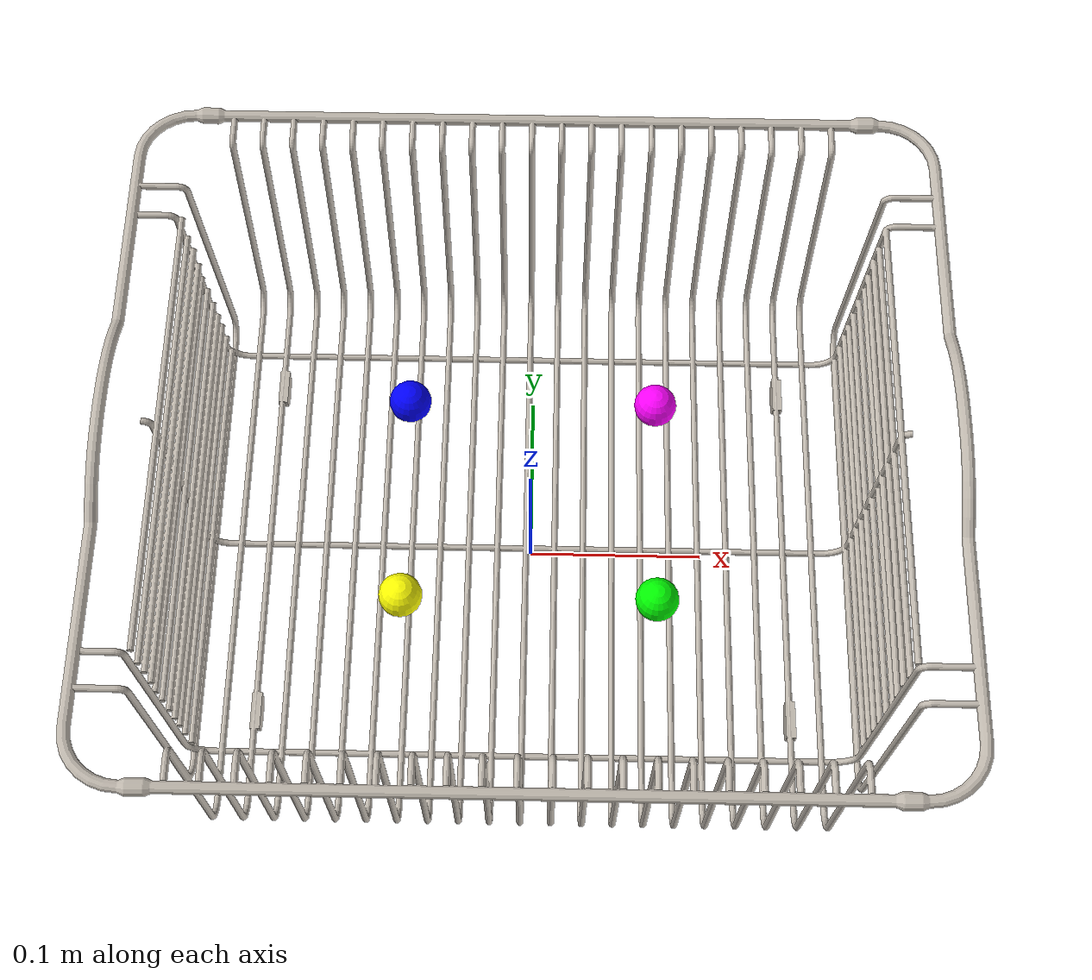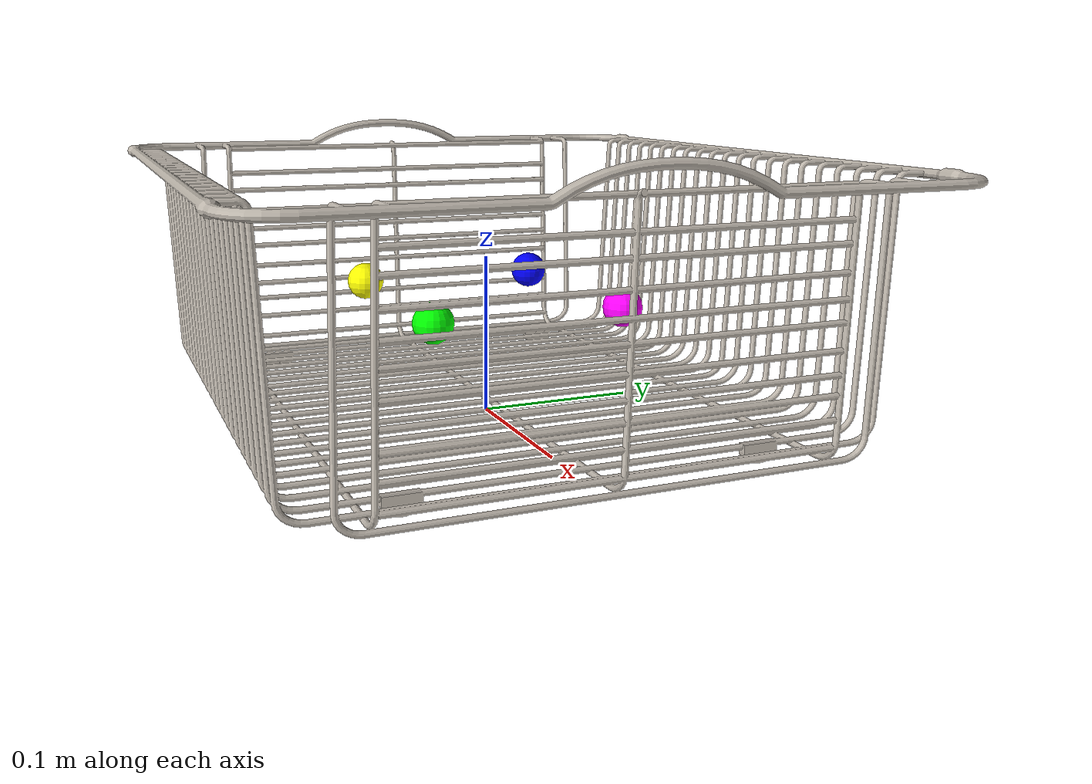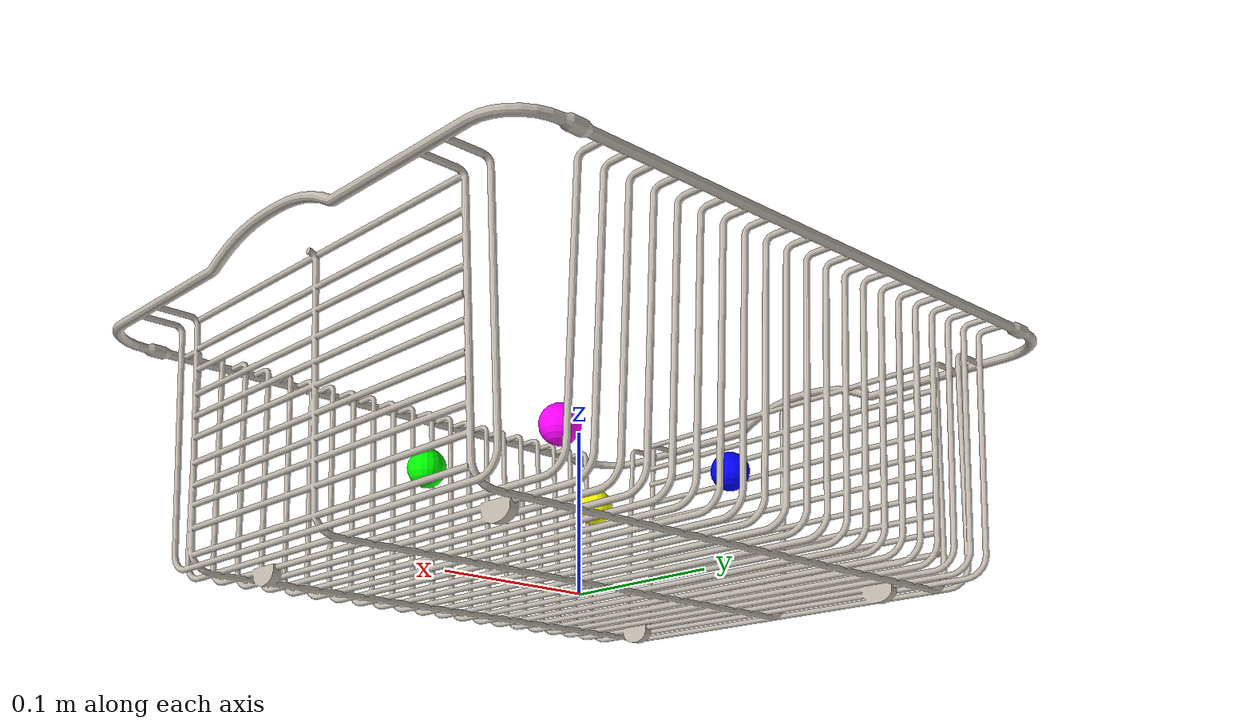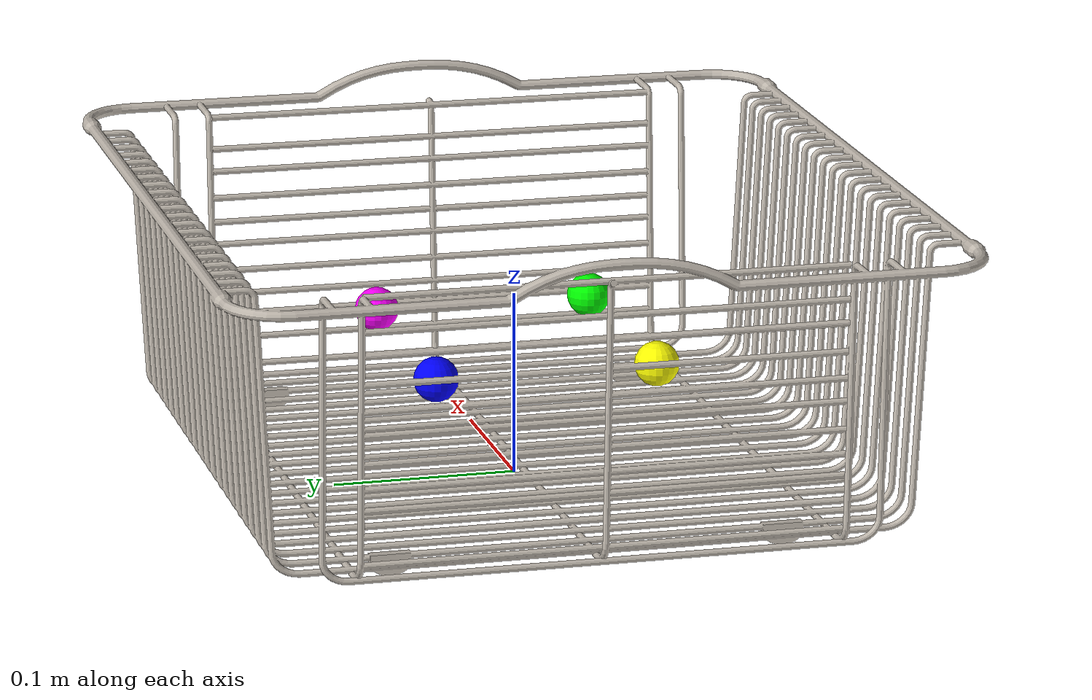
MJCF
<?xml version="1.0" ?>
<!-- @bbox dx=0.4500 dy=0.4014 dz=0.1783 -->
<mujoco model="basket">
  <asset>
    <texture type="2d" name="material_0" file="material_0.png"/>
    <material name="material_0" texture="material_0" specular="0.4000000000000001" shininess="0.001"/>
    <mesh file="basket.obj" scale="0.0012162161558655983 0.0012162161558655983 0.0012162161558655983"/>
    <mesh file="basket/basket_collision_0.obj" scale="0.0012162161558655983 0.0012162161558655983 0.0012162161558655983"/>
    <mesh file="basket/basket_collision_1.obj" scale="0.0012162161558655983 0.0012162161558655983 0.0012162161558655983"/>
    <mesh file="basket/basket_collision_2.obj" scale="0.0012162161558655983 0.0012162161558655983 0.0012162161558655983"/>
    <mesh file="basket/basket_collision_3.obj" scale="0.0012162161558655983 0.0012162161558655983 0.0012162161558655983"/>
    <mesh file="basket/basket_collision_4.obj" scale="0.0012162161558655983 0.0012162161558655983 0.0012162161558655983"/>
    <mesh file="basket/basket_collision_5.obj" scale="0.0012162161558655983 0.0012162161558655983 0.0012162161558655983"/>
    <mesh file="basket/basket_collision_6.obj" scale="0.0012162161558655983 0.0012162161558655983 0.0012162161558655983"/>
    <mesh file="basket/basket_collision_7.obj" scale="0.0012162161558655983 0.0012162161558655983 0.0012162161558655983"/>
    <mesh file="basket/basket_collision_8.obj" scale="0.0012162161558655983 0.0012162161558655983 0.0012162161558655983"/>
    <mesh file="basket/basket_collision_9.obj" scale="0.0012162161558655983 0.0012162161558655983 0.0012162161558655983"/>
    <mesh file="basket/basket_collision_10.obj" scale="0.0012162161558655983 0.0012162161558655983 0.0012162161558655983"/>
    <mesh file="basket/basket_collision_11.obj" scale="0.0012162161558655983 0.0012162161558655983 0.0012162161558655983"/>
    <mesh file="basket/basket_collision_12.obj" scale="0.0012162161558655983 0.0012162161558655983 0.0012162161558655983"/>
    <mesh file="basket/basket_collision_13.obj" scale="0.0012162161558655983 0.0012162161558655983 0.0012162161558655983"/>
    <mesh file="basket/basket_collision_14.obj" scale="0.0012162161558655983 0.0012162161558655983 0.0012162161558655983"/>
    <mesh file="basket/basket_collision_15.obj" scale="0.0012162161558655983 0.0012162161558655983 0.0012162161558655983"/>
    <mesh file="basket/basket_collision_16.obj" scale="0.0012162161558655983 0.0012162161558655983 0.0012162161558655983"/>
    <mesh file="basket/basket_collision_17.obj" scale="0.0012162161558655983 0.0012162161558655983 0.0012162161558655983"/>
    <mesh file="basket/basket_collision_18.obj" scale="0.0012162161558655983 0.0012162161558655983 0.0012162161558655983"/>
    <mesh file="basket/basket_collision_19.obj" scale="0.0012162161558655983 0.0012162161558655983 0.0012162161558655983"/>
    <mesh file="basket/basket_collision_20.obj" scale="0.0012162161558655983 0.0012162161558655983 0.0012162161558655983"/>
    <mesh file="basket/basket_collision_21.obj" scale="0.0012162161558655983 0.0012162161558655983 0.0012162161558655983"/>
    <mesh file="basket/basket_collision_22.obj" scale="0.0012162161558655983 0.0012162161558655983 0.0012162161558655983"/>
    <mesh file="basket/basket_collision_23.obj" scale="0.0012162161558655983 0.0012162161558655983 0.0012162161558655983"/>
    <mesh file="basket/basket_collision_24.obj" scale="0.0012162161558655983 0.0012162161558655983 0.0012162161558655983"/>
    <mesh file="basket/basket_collision_25.obj" scale="0.0012162161558655983 0.0012162161558655983 0.0012162161558655983"/>
    <mesh file="basket/basket_collision_26.obj" scale="0.0012162161558655983 0.0012162161558655983 0.0012162161558655983"/>
    <mesh file="basket/basket_collision_27.obj" scale="0.0012162161558655983 0.0012162161558655983 0.0012162161558655983"/>
    <mesh file="basket/basket_collision_28.obj" scale="0.0012162161558655983 0.0012162161558655983 0.0012162161558655983"/>
    <mesh file="basket/basket_collision_29.obj" scale="0.0012162161558655983 0.0012162161558655983 0.0012162161558655983"/>
    <mesh file="basket/basket_collision_30.obj" scale="0.0012162161558655983 0.0012162161558655983 0.0012162161558655983"/>
    <mesh file="basket/basket_collision_31.obj" scale="0.0012162161558655983 0.0012162161558655983 0.0012162161558655983"/>
    <mesh file="basket/basket_collision_32.obj" scale="0.0012162161558655983 0.0012162161558655983 0.0012162161558655983"/>
    <mesh file="basket/basket_collision_33.obj" scale="0.0012162161558655983 0.0012162161558655983 0.0012162161558655983"/>
    <mesh file="basket/basket_collision_34.obj" scale="0.0012162161558655983 0.0012162161558655983 0.0012162161558655983"/>
    <mesh file="basket/basket_collision_35.obj" scale="0.0012162161558655983 0.0012162161558655983 0.0012162161558655983"/>
    <mesh file="basket/basket_collision_36.obj" scale="0.0012162161558655983 0.0012162161558655983 0.0012162161558655983"/>
    <mesh file="basket/basket_collision_37.obj" scale="0.0012162161558655983 0.0012162161558655983 0.0012162161558655983"/>
  </asset>
  <worldbody>
    <body name="basket">
      <inertial pos="0 0 0.089166" mass="0.5" diaginertia="0.0008 0.0008 0.0005"/>
      <geom material="material_0" mesh="basket" class="visual"/>
      <geom mesh="basket_collision_0"  class="collision"/>
      <geom mesh="basket_collision_1"  class="collision"/>
      <geom mesh="basket_collision_2"  class="collision"/>
      <geom mesh="basket_collision_3"  class="collision"/>
      <geom mesh="basket_collision_4"  class="collision"/>
      <geom mesh="basket_collision_5"  class="collision"/>
      <geom mesh="basket_collision_6"  class="collision"/>
      <geom mesh="basket_collision_7"  class="collision"/>
      <geom mesh="basket_collision_8"  class="collision"/>
      <geom mesh="basket_collision_9"  class="collision"/>
      <geom mesh="basket_collision_10"  class="collision"/>
      <geom mesh="basket_collision_11"  class="collision"/>
      <geom mesh="basket_collision_12"  class="collision"/>
      <geom mesh="basket_collision_13"  class="collision"/>
      <geom mesh="basket_collision_14"  class="collision"/>
      <geom mesh="basket_collision_15"  class="collision"/>
      <geom mesh="basket_collision_16"  class="collision"/>
      <geom mesh="basket_collision_17"  class="collision"/>
      <geom mesh="basket_collision_18"  class="collision"/>
      <geom mesh="basket_collision_19"  class="collision"/>
      <geom mesh="basket_collision_20"  class="collision"/>
      <geom mesh="basket_collision_21"  class="collision"/>
      <geom mesh="basket_collision_22"  class="collision"/>
      <geom mesh="basket_collision_23"  class="collision"/>
      <geom mesh="basket_collision_24"  class="collision"/>
      <geom mesh="basket_collision_25"  class="collision"/>
      <geom mesh="basket_collision_26"  class="collision"/>
      <geom mesh="basket_collision_27"  class="collision"/>
      <geom mesh="basket_collision_28"  class="collision"/>
      <geom mesh="basket_collision_29"  class="collision"/>
      <geom mesh="basket_collision_30"  class="collision"/>
      <geom mesh="basket_collision_31"  class="collision"/>
      <geom mesh="basket_collision_32"  class="collision"/>
      <geom mesh="basket_collision_33"  class="collision"/>
      <geom mesh="basket_collision_34"  class="collision"/>
      <geom mesh="basket_collision_35"  class="collision"/>
      <geom mesh="basket_collision_36"  class="collision"/>
      <geom mesh="basket_collision_37"  class="collision"/>
          <site class="grasppoint" group="4" pos="0.0000 0.0000 0.1070"/>
      <site class="grasppoint" group="4" pos="0.0000 0.0000 0.1427"/>
      <site class="grasppoint" group="4" pos="0.0000 0.0000 0.1694"/>
      <site class="boundpoint" group="3" name="bnd_p0"   pos="-0.2250 -0.2007 0.0000"/>
      <site class="boundpoint" group="3" name="bnd_px"   pos="0.2250 -0.2007 0.0000"/>
      <site class="boundpoint" group="3" name="bnd_py"   pos="-0.2250 0.2007 0.0000"/>
      <site class="boundpoint" group="3" name="bnd_pxy"  pos="0.2250 0.2007 0.0000"/>
      <site class="boundpoint" group="3" name="bnd_pz"   pos="-0.2250 -0.2007 0.1783"/>
      <site class="boundpoint" group="3" name="bnd_pxz"  pos="0.2250 -0.2007 0.1783"/>
      <site class="boundpoint" group="3" name="bnd_pyz"  pos="-0.2250 0.2007 0.1783"/>
      <site class="boundpoint" group="3" name="bnd_pxyz" pos="0.2250 0.2007 0.1783"/>
      <site name="top_site" pos="0 0 0.1783" size="0.01" rgba="1 0 0 0"/>
      <site class="placepoint" group="2" name="place_c0" pos="-0.0700 -0.0600 0.0767"/>
      <site class="placepoint" group="2" name="place_c1" pos=" 0.0700 -0.0600 0.0767"/>
      <site class="placepoint" group="2" name="place_c2" pos="-0.0700  0.0600 0.0767"/>
      <site class="placepoint" group="2" name="place_c3" pos=" 0.0700  0.0600 0.0767"/>
      <site name="bottom_site" pos="0 0 0" size="0.01" rgba="0 1 0 0"/>
      <!-- TEMPORARY placepoint markers -->
      <geom name="pp_marker0" type="sphere" size="0.012" pos="-0.0700 -0.0600 0.0767" rgba="1 1 0 1" group="1" contype="0" conaffinity="0"/>
      <geom name="pp_marker1" type="sphere" size="0.012" pos=" 0.0700 -0.0600 0.0767" rgba="0 1 0 1" group="1" contype="0" conaffinity="0"/>
      <geom name="pp_marker2" type="sphere" size="0.012" pos="-0.0700  0.0600 0.0767" rgba="0 0 1 1" group="1" contype="0" conaffinity="0"/>
      <geom name="pp_marker3" type="sphere" size="0.012" pos=" 0.0700  0.0600 0.0767" rgba="1 0 1 1" group="1" contype="0" conaffinity="0"/>
</body>
  </worldbody>
  <compiler boundmass="0.015" boundinertia="1e-05" angle="radian"/>
  <default>
    <default class="visual">
      <geom group="2" type="mesh" contype="0" conaffinity="0" density="50"/>
    </default>
    <default class="collision">
      <geom group="3" type="mesh" density="50" friction="1.5 0.1 0.1" solimp="0.9 0.95 0.001" solref="0.02 1"/>
    </default>
    <default class="boundpoint">
      <site type="sphere" size="0.01" group="3" rgba="1 0 0 1"/>
    </default>
    <default class="placepoint">
      <site type="sphere" size="0.01" group="2" rgba="0 0 1 0"/>
    </default>
    <default class="grasppoint">
      <site type="sphere" size="0.005" group="4" rgba="0 0 1 1"/>
    </default>
  </default>
</mujoco>
